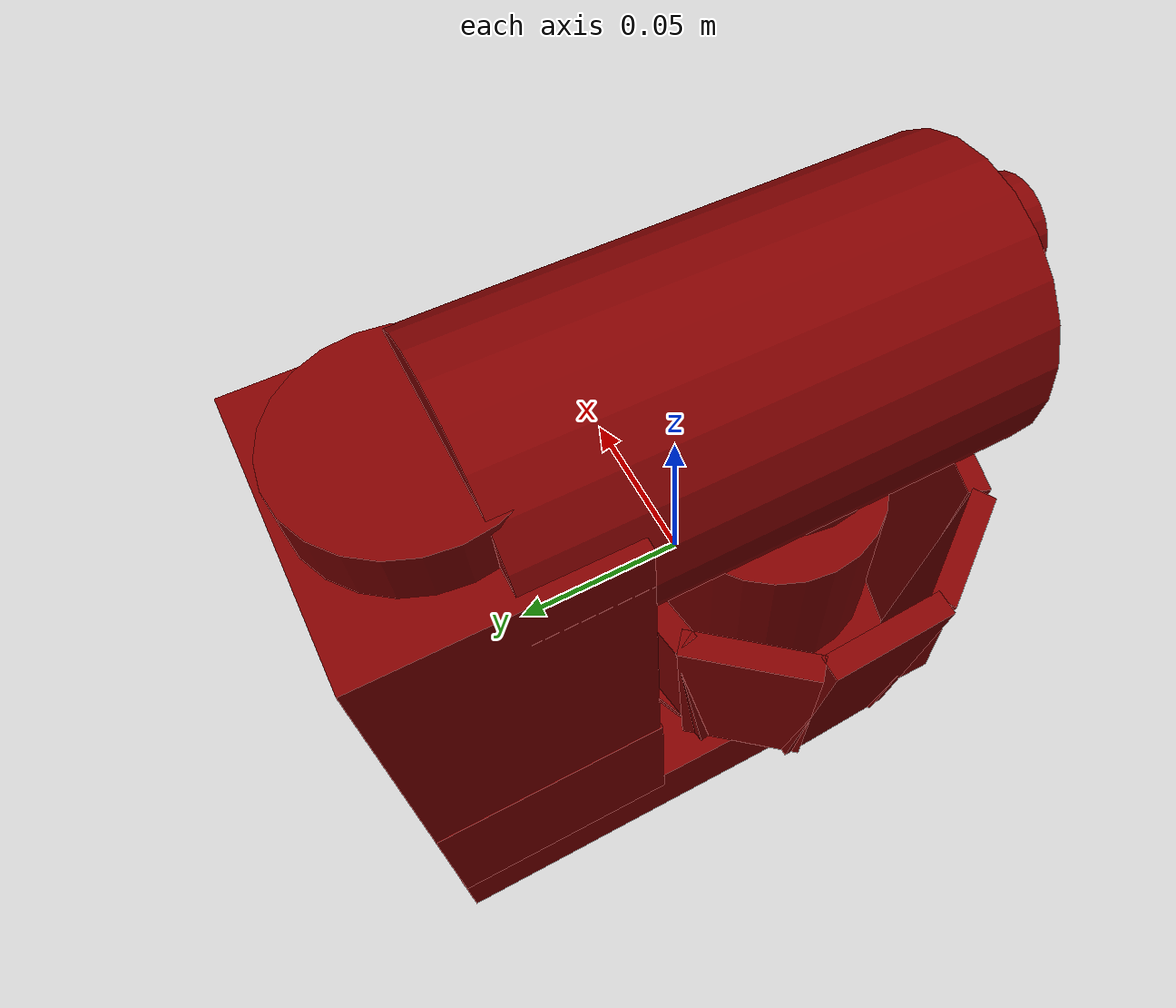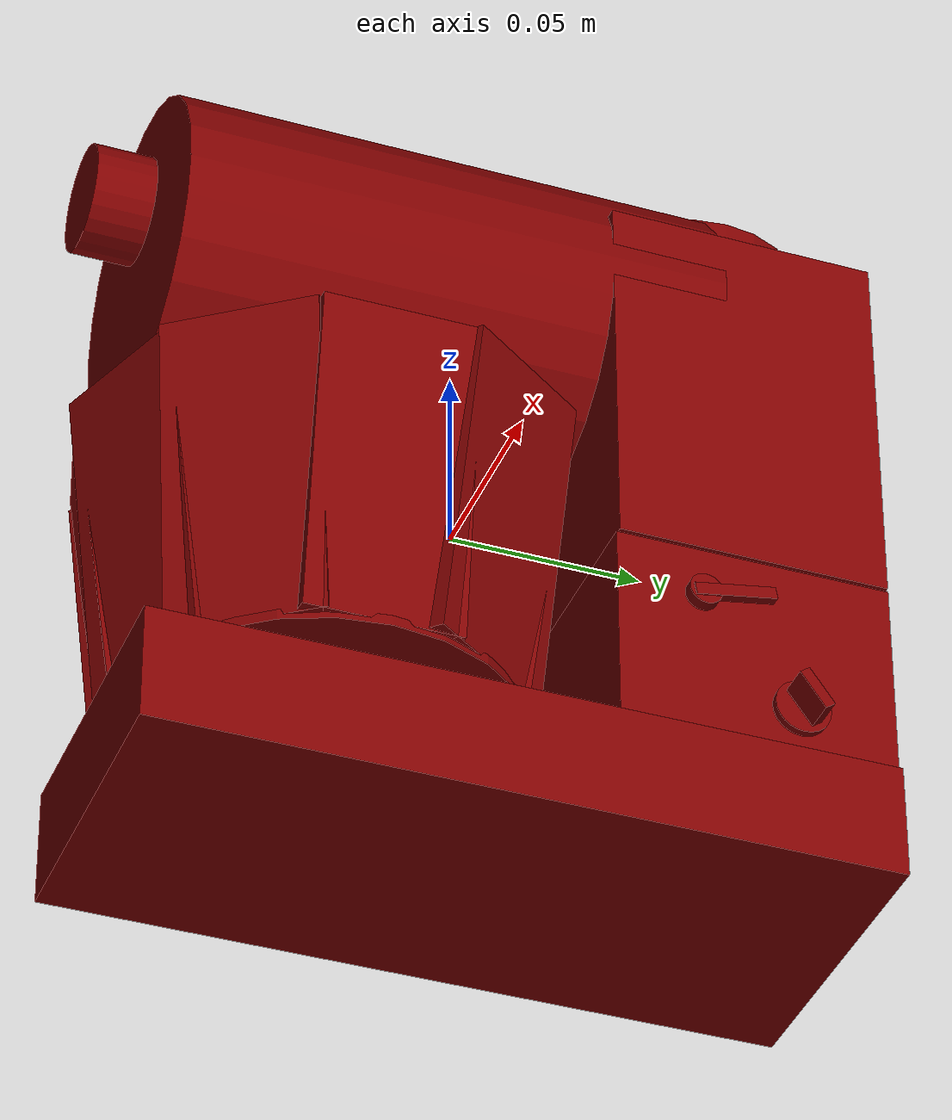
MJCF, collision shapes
<?xml version='1.0' encoding='UTF-8'?>
<mujoco model="model">
  <option timestep="0.002" gravity="0.0 0.0 -9.81"/>
  <compiler angle="radian"/>
  <asset>
    <mesh file="visuals/Blender001.obj" name="Blender001_vis"/>
    <mesh file="visuals/Body001.obj" name="Body001_vis"/>
    <mesh file="visuals/Container001.obj" name="Container001_vis"/>
    <mesh file="visuals/Knob001.obj" name="Knob001_vis"/>
    <mesh file="visuals/Lever001.obj" name="Lever001_vis"/>
    <mesh file="visuals/Lid001.obj" name="Lid001_vis"/>
    <texture file="visuals/T_BC001.png" name="Body001_material" type="2d"/>
    <material name="Body001_material" rgba="1 1 1 1.0" texture="Body001_material" shininess="0.1" specular="4"/>
    <texture file="visuals/T_BC001.png" name="Container001_material" type="2d"/>
    <material name="Container001_material" rgba="1 1 1 1.0" texture="Container001_material" shininess="0.1" specular="4"/>
    <texture file="visuals/T_BC001.png" name="Knob001_material" type="2d"/>
    <material name="Knob001_material" rgba="1 1 1 1.0" texture="Knob001_material" shininess="0.4472135901451111" specular="0.3103448502657381"/>
    <texture file="visuals/T_BC001.png" name="Lever001_material" type="2d"/>
    <material name="Lever001_material" rgba="1 1 1 1.0" texture="Lever001_material" shininess="0.4472135901451111" specular="0.3103448502657381"/>
    <texture file="visuals/T_BC001.png" name="Lid001_material" type="2d"/>
    <material name="Lid001_material" rgba="1 1 1 1.0" texture="Lid001_material" shininess="0.1" specular="4"/>
    <texture file="visuals/T_BC001.png" name="Blender001_material" type="2d"/>
    <material name="Blender001_material" rgba="1 1 1 1.0" texture="Blender001_material" shininess="0.1" specular="4"/>
  </asset>
  <default>
    <default class="visual">
      <geom conaffinity="0" contype="0" group="1" type="mesh"/>
    </default>
    <default class="collision">
      <geom group="0" rgba="0.5 0 0 0.5"/>
    </default>
    <default class="spawn">
      <geom group="0" rgba="1 1 1 0.5" contype="0" conaffinity="0"/>
      <site group="0" rgba="1 1 1 0.5"/>
    </default>
    <default class="region">
      <geom group="1" conaffinity="0" contype="0" rgba="0 1 0 0"/>
    </default>
  </default>
  <worldbody>
    <body>
      <body name="object">
        <geom mesh="Body001_vis" type="mesh" solimp="0.998 0.998 0.001" solref="0.001 1" friction="0.95 0.3 0.1" class="visual" material="Body001_material"/>
        <geom class="collision" type="box" pos="-0.0004310235381126404 0.0626450777053833 -0.04559173062443733" size="0.042134400457143784 0.03553343936800957 0.025828372687101364" quat="1.0 0.0 0.0 0.0" density="1000.0"/>
        <geom class="collision" type="box" pos="0.0015023499727249146 0.004708323627710342 -0.08704345673322678" size="0.040992505848407745 0.09414729475975037 0.015087174251675606" quat="1.0 0.0 0.0 0.0" density="1000.0"/>
        <body name="Container001">
          <joint axis="0.0 0.0 1.0" pos="-1.862645149230957e-09 -0.03332948312163353 -0.028494998812675476" limited="true" name="Container001_joint" range="0.0 0.015" type="slide" damping="1" frictionloss="1" armature=".01" stiffness="0.05"/>
          <geom mesh="Container001_vis" type="mesh" solimp="0.998 0.998 0.001" solref="0.001 1" friction="0.95 0.3 0.1" class="visual" material="Container001_material"/>
          <geom class="collision" type="cylinder" pos="0.0021163448691368103 -0.03332949057221413 -0.0695764347910881" size="0.05134165659546852 0.0013763426104560494" quat="7.907536314633035e-07 0.0 0.0 1.0" density="1000.0"/>
          <geom class="collision" type="box" pos="0.05469846725463867 -0.03526010736823082 -0.027490172535181046" size="0.0038105605635792017 0.01992732845246792 0.041925087571144104" quat="7.889205448918801e-07 0.9976818561553955 5.3811302080930545e-08 -0.06805067509412766" density="1000.0"/>
          <geom class="collision" type="box" pos="0.043095558881759644 -0.06633421778678894 -0.027490172535181046" size="0.0038105593994259834 0.01992732472717762 0.041925083845853806" quat="-0.021448539569973946 0.946826696395874 -0.31446513533592224 -0.06458215415477753" density="1000.0"/>
          <geom class="collision" type="box" pos="0.017766296863555908 -0.08356578648090363 -0.027490172535181046" size="0.0038105607964098454 0.01992732845246792 0.041925083845853806" quat="0.03932137414813042 -0.8142754435539246 0.5764760375022888 0.0555402897298336" density="1000.0"/>
          <geom class="collision" type="box" pos="-0.013525791466236115 -0.08356823027133942 -0.027490172535181046" size="0.003810559632256627 0.01992732658982277 0.0419250950217247" quat="0.054057832807302475 -0.606026291847229 0.7925283908843994 0.04133569821715355" density="1000.0"/>
          <geom class="collision" type="box" pos="-0.04284176230430603 -0.06521312892436981 -0.027490172535181046" size="0.003810561029240489 0.01992732658982277 0.041925106197595596" quat="0.06463616341352463 -0.31204259395599365 0.9476278424263 0.021284719929099083" density="1000.0"/>
          <geom class="collision" type="box" pos="-0.05480490252375603 -0.03327237442135811 -0.027490172535181046" size="0.0038105621933937073 0.01992732845246792 0.0419250912964344" quat="0.06803962588310242 -0.01776481233537197 0.9975237250328064 0.00121095753274858" density="1000.0"/>
          <geom class="collision" type="box" pos="-0.04357905685901642 -0.0011529196053743362 -0.027490172535181046" size="0.003810560330748558 0.01992732845246792 0.0419250950217247" quat="0.0639026090502739 0.3429870903491974 0.9368718862533569 -0.02339543029665947" density="1000.0"/>
          <geom class="collision" type="box" pos="-0.016141384840011597 0.013807925395667553 -0.027490172535181046" size="0.0038105605635792017 0.01992732658982277 0.0419250950217247" quat="0.051528118550777435 0.6516742706298828 0.7554401159286499 -0.044449321925640106" density="1000.0"/>
          <geom class="collision" type="box" pos="0.04631426930427551 -0.004778681322932243 -0.027490172535181046" size="0.0038105605635792017 0.01992732658982277 0.041925098747015" quat="0.020443733781576157 0.951599657535553 0.2997118830680847 -0.06490722298622131" density="1000.0"/>
          <geom class="collision" type="box" pos="0.018610559403896332 0.012215384282171726 -0.027490172535181046" size="0.003810559632256627 0.01992732845246792 0.0419250912964344" quat="0.042815063148736954 0.7754780650138855 0.6276965141296387 -0.05289396643638611" density="1000.0"/>
        </body>
        <body name="Knob001">
          <joint axis="-1.0 0.0 0.0" pos="0.04182235524058342 0.07192973792552948 -0.06326951086521149" limited="true" name="Knob001_joint" range="0.0 3.752457891787808" type="hinge" damping="0.05" armature="0.001" springref="-0.1"/>
          <geom mesh="Knob001_vis" type="mesh" solimp="0.998 0.998 0.001" solref="0.001 1" friction="0.95 0.3 0.1" class="visual" material="Knob001_material"/>
          <geom class="collision" type="cylinder" pos="0.045503631234169006 0.07187645137310028 -0.06328176707029343" size="0.007163526024669409 0.0010306246113032103" quat="0.7071068286895752 -0.0 0.7071067690849304 0.0" density="1000.0"/>
          <geom class="collision" type="box" pos="0.04971322789788246 0.07195042073726654 -0.06323572248220444" size="0.004999999888241291 0.00543934153392911 0.0015136105939745903" quat="0.4617486000061035 0.8870108723640442 0.0 0.0" density="1000.0"/>
        </body>
        <body name="Lever001">
          <joint axis="-1.0 0.0 0.0" pos="0.044240228831768036 0.048424676060676575 -0.03359454870223999" limited="true" name="Lever001_joint" range="0.0 1.1344640137963142" type="hinge" damping="1" frictionloss="1" armature=".01" stiffness="1" springref="-0.1"/>
          <geom mesh="Lever001_vis" type="mesh" solimp="0.998 0.998 0.001" solref="0.001 1" friction="0.95 0.3 0.1" class="visual" material="Lever001_material"/>
          <geom class="collision" type="cylinder" pos="0.04363176226615906 0.048574890941381454 -0.033692821860313416" size="0.004249905236065388 0.0016439202008768916" quat="0.7071068286895752 -0.0 0.7071067690849304 0.0" density="1000.0"/>
          <geom class="collision" type="box" pos="0.0444757342338562 0.05610574409365654 -0.03273214027285576" size="0.0012804667931050062 0.010646824724972248 0.001636094180867076" quat="0.9961075782775879 0.08814577013254166 1.9572289396170386e-17 1.010475796539977e-24" density="1000.0"/>
        </body>
        <body name="Lid001">
          <joint axis="-1.0 0.0 0.0" pos="-0.0020681414753198624 0.0981544777750969 -0.01941082626581192" limited="true" name="Lid001_joint" range="0.0 1.5707963267948966" type="hinge" damping="1" frictionloss="1" armature=".01" stiffness="0.05"/>
          <geom mesh="Lid001_vis" type="mesh" solimp="0.998 0.998 0.001" solref="0.001 1" friction="0.95 0.3 0.1" class="visual" material="Lid001_material"/>
          <geom class="collision" type="cylinder" pos="-0.00011126697063446045 -0.012202950194478035 0.06557824462652206" size="0.04246494919061661 0.07064517587423325" quat="0.7071067094802856 0.70710688829422 0.0 0.0" density="1000.0"/>
          <geom class="collision" type="cylinder" pos="-0.0006551966071128845 0.06430406868457794 0.07689616829156876" size="0.031119324266910553 0.019573740661144257" quat="1.0 0.0 0.0 0.0" density="1000.0"/>
          <geom class="collision" type="cylinder" pos="2.86102294921875e-06 -0.0843304842710495 0.08138790726661682" size="0.014077305793762207 0.014077305793762207" quat="0.7071067094802856 0.70710688829422 -1.5700929612083792e-16 2.2148514736588345e-23" density="1000.0"/>
          <geom class="collision" type="cylinder" pos="0.0021163448691368103 -0.03480721637606621 0.040137000381946564" size="0.03088000975549221 0.015879381448030472" quat="1.0 0.0 0.0 0.0" density="1000.0"/>
          <geom class="collision" type="box" pos="-0.0004310235381126404 0.06308551132678986 0.031415510922670364" size="0.042134400457143784 0.03506212681531906 0.05013008788228035" quat="1.0 0.0 0.0 0.0" density="1000.0"/>
          <body name="Blender001">
            <joint axis="0.0 0.0 1.0" pos="5.7697994634509087e-05 -0.034466370940208435 0.017250526696443558" limited="false" name="Blender001_joint" range="0 360" type="hinge" damping="1" frictionloss="1" armature=".01" stiffness="0.05"/>
            <geom mesh="Blender001_vis" type="mesh" solimp="0.998 0.998 0.001" solref="0.001 1" friction="0.95 0.3 0.1" class="visual" material="Blender001_material"/>
            <geom class="collision" type="cylinder" pos="-0.00033958256244659424 -0.03337163105607033 0.02727341093122959" size="0.015333653427660465 0.017608201131224632" quat="1.0 0.0 0.0 0.0" density="1000.0"/>
            <geom class="collision" type="cylinder" pos="-0.00033958256244659424 -0.03337163105607033 -0.016413791105151176" size="0.03500000014901161 0.026481226086616516" quat="1.0 0.0 0.0 0.0" density="1000.0"/>
          </body>
        </body>
        <geom class="region" name="reg_main" type="box" pos="3.9062462747097015e-05 0.0 0.0" size="0.04367361217737198 0.09843224287033081 0.10189833492040634"/>
      </body>
    </body>
  </worldbody>
  <actuator>
    <motor name="Container001_joint_actuator" joint="Container001_joint" gear="50"/>
    <motor name="Knob001_joint_actuator" joint="Knob001_joint" gear="10"/>
    <motor name="Lever001_joint_actuator" joint="Lever001_joint" gear="10"/>
    <motor name="Lid001_joint_actuator" joint="Lid001_joint" gear="10"/>
    <motor name="Blender001_joint_actuator" joint="Blender001_joint" gear="10"/>
  </actuator>
</mujoco>
